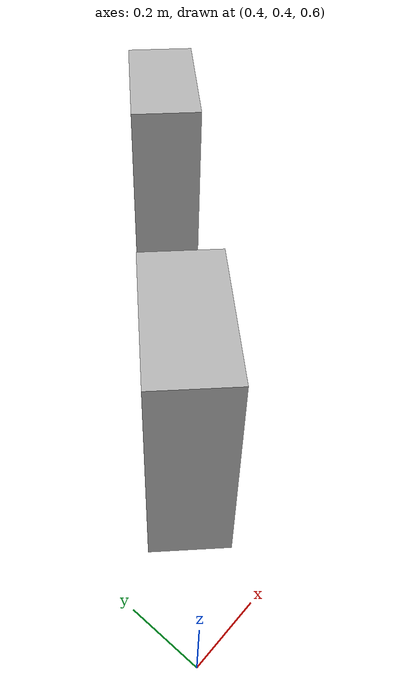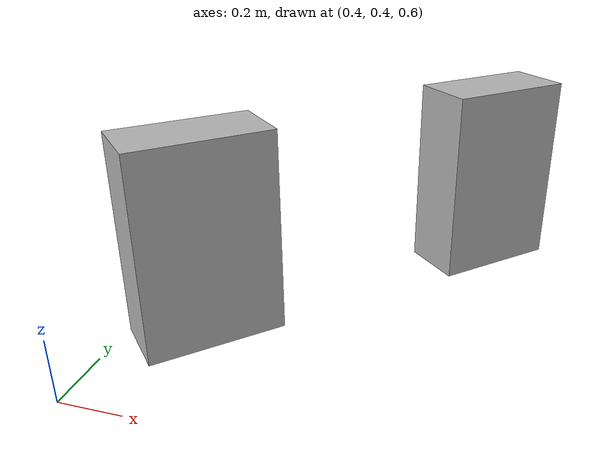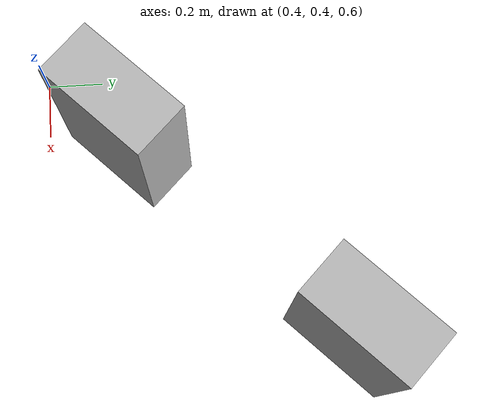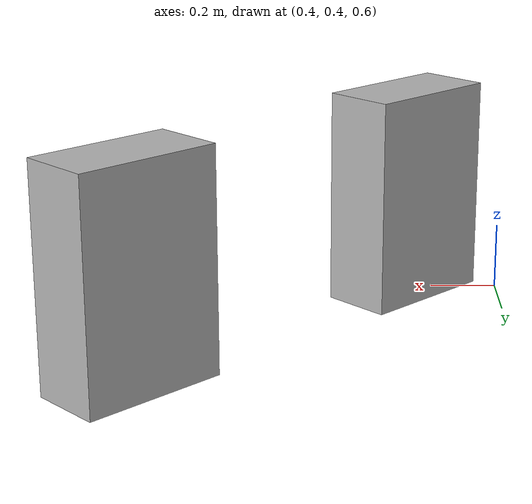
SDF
<?xml version="1.0" ?>
<sdf version="1.4">
    <world name="default">
        <include>
            <uri>model://sun</uri>
        </include>
        <physics type="dart">
            <gravity>0 0 -10.0</gravity>
        </physics>
        <!-- 25.3kg total mass -->
        <model name="double_pendulum_1">
            <pose>0 0 1 0 0 -0.7854</pose>
            <link name="link1">
                <pose>0 1 0 0 0 0</pose>
                <inertial>
                    <inertia>
                        <ixx>1</ixx>
                        <ixy>0</ixy>
                        <ixz>0</ixz>
                        <iyy>1</iyy>
                        <iyz>0</iyz>
                        <izz>1</izz>
                    </inertia>
                    <mass>1.0</mass>
                </inertial>
                <visual name="visual">
                    <pose>0 0 0 0 0 0</pose>
                    <geometry>
                        <box>
                            <size>0.2 0.4 0.6</size>
                        </box>
                    </geometry>
                    <material>
                        <script>Gazebo/WoodPallet</script>
                    </material>
                </visual>
            </link>
            <link name="link2">
                <pose>0 2 0 0 0 0</pose>
                <inertial>
                    <inertia>
                        <ixx>1</ixx>
                        <ixy>0</ixy>
                        <ixz>0</ixz>
                        <iyy>1</iyy>
                        <iyz>0</iyz>
                        <izz>1</izz>
                    </inertia>
                    <mass>1.0</mass>
                </inertial>
                <visual name="visual">
                    <pose>0 0 0 0 0 0</pose>
                    <geometry>
                        <box>
                            <size>0.2 0.4 0.6</size>
                        </box>
                    </geometry>
                    <material>
                        <script>Gazebo/WoodPallet</script>
                    </material>
                </visual>
            </link>
            <joint name="joint01" type="revolute">
                <pose>0 -0.5 0 0 0 0</pose>
                <axis>
                    <xyz>1.0 0.0 0.0</xyz>
                </axis>
                <parent>world</parent>
                <child>link1</child>
            </joint>
            <joint name="joint12" type="revolute">
                <pose>0 -0.5 0 0 0 0</pose>
                <axis>
                    <xyz>1.0 0.0 0.0</xyz>
                </axis>
                <parent>link1</parent>
                <child>link2</child>
            </joint>
        </model>
    </world>
</sdf>
